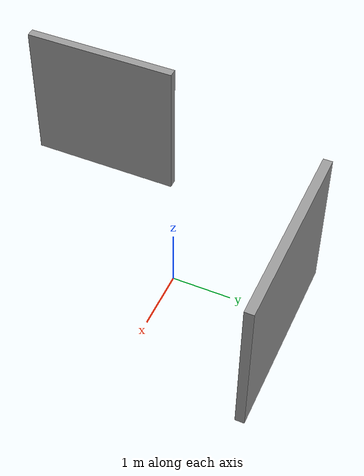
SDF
<?xml version='1.0'?>
<sdf version='1.6'>
  <model name='obstacle'>
    <pose frame=''>-0 -0.75 0 0 -0 0</pose>
    <link name='Wall_0'>
      <collision name='Wall_0_Collision'>
        <geometry>
          <box>
            <size>2.65 0.15 2.5</size>
          </box>
        </geometry>
        <pose frame=''>0 0 1.25 0 -0 0</pose>
      </collision>
      <visual name='Wall_0_Visual'>
        <pose frame=''>0 0 1.25 0 -0 0</pose>
        <geometry>
          <box>
            <size>2.65 0.15 2.5</size>
          </box>
        </geometry>
        <material>
          <script>
            <uri>file://media/materials/scripts/gazebo.material</uri>
            <name>Gazebo/Grey</name>
          </script>
          <ambient>1 1 1 1</ambient>
        </material>
        <meta>
          <layer>0</layer>
        </meta>
      </visual>
      <pose frame=''>-2 -1.5 0 0 -0 1.5708</pose>
    </link>
    <link name='Wall_2'>
      <collision name='Wall_2_Collision'>
        <geometry>
          <box>
            <size>3.15 0.15 2.5</size>
          </box>
        </geometry>
        <pose frame=''>0 0 1.25 0 -0 0</pose>
      </collision>
      <visual name='Wall_2_Visual'>
        <pose frame=''>0 0 1.25 0 -0 0</pose>
        <geometry>
          <box>
            <size>3.15 0.15 2.5</size>
          </box>
        </geometry>
        <material>
          <script>
            <uri>file://media/materials/scripts/gazebo.material</uri>
            <name>Gazebo/Grey</name>
          </script>
          <ambient>1 1 1 1</ambient>
        </material>
        <meta>
          <layer>0</layer>
        </meta>
      </visual>
      <pose frame=''>0.5 2.75 0 0 -0 0</pose>
    </link>
    <static>1</static>
  </model>
</sdf>
